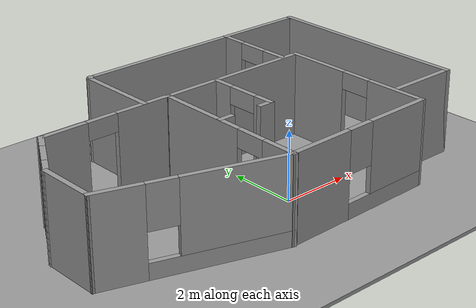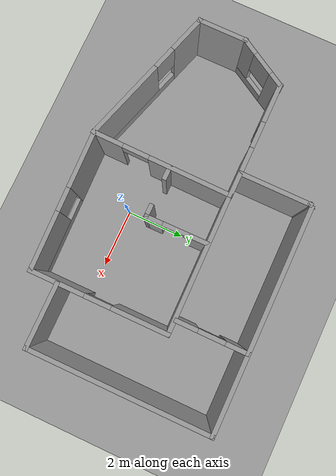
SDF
<sdf version="1.6">
 <world name="default">
  <light name="sun" type="directional">
   <pose>0 0 10 0 -0 0</pose>
   <diffuse>0.8 0.8 0.8 1</diffuse>
   <specular>0.2 0.2 0.2 1</specular>
   <attenuation>
    <range>1000</range>
    <constant>0.9</constant>
    <linear>0.01</linear>
    <quadratic>0.001</quadratic>
   </attenuation>
   <direction>-0.5 0.1 -0.9</direction>
  </light>
  <model name="ground_plane">
   <static>1</static>
   <link name="link">
    <collision name="collision">
     <geometry><plane><normal>0 0 1</normal><size>100 100</size></plane></geometry>
     <surface>
      <contact><collide_bitmask>65535</collide_bitmask></contact>
      <friction><ode><mu>100</mu><mu2>50</mu2></ode></friction>
     </surface>
    </collision>
    <visual name="visual">
     <cast_shadows>0</cast_shadows>
     <geometry><plane><normal>0 0 1</normal><size>100 100</size></plane></geometry>
     <material>
      <script><uri>file://media/materials/scripts/gazebo.material</uri><name>Gazebo/Grey</name></script>
     </material>
    </visual>
   </link>
  </model>
  <gravity>0 0 -9.8</gravity>
  <magnetic_field>6e-06 2.3e-05 -4.2e-05</magnetic_field>
  <atmosphere type="adiabatic"/>
  <physics name="default_physics" default="0" type="ode">
   <max_step_size>0.001</max_step_size>
   <real_time_factor>1</real_time_factor>
   <real_time_update_rate>1000</real_time_update_rate>
  </physics>
  <scene><ambient>0.4 0.4 0.4 1</ambient><background>0.7 0.7 0.7 1</background><shadows>1</shadows></scene>
  <spherical_coordinates>
   <surface_model>EARTH_WGS84</surface_model>
   <latitude_deg>0</latitude_deg>
   <longitude_deg>0</longitude_deg>
   <elevation>0</elevation>
   <heading_deg>0</heading_deg>
  </spherical_coordinates>
  <model name="ground_plane_0">
   <static>1</static>
   <link name="link">
    <collision name="collision">
     <geometry><plane><normal>0 0 1</normal><size>100 100</size></plane></geometry>
     <surface>
      <contact><collide_bitmask>65535</collide_bitmask></contact>
      <friction><ode><mu>100</mu><mu2>50</mu2></ode></friction>
     </surface>
    </collision>
    <visual name="visual">
     <cast_shadows>0</cast_shadows>
     <geometry><plane><normal>0 0 1</normal><size>100 100</size></plane></geometry>
     <material>
      <script><uri>file://media/materials/scripts/gazebo.material</uri><name>Gazebo/Grey</name></script>
     </material>
    </visual>
   </link>
   <pose>-0.652161 2.77731 0 0 -0 0</pose>
  </model>
  <model name="Random">
   <pose>-0.584846 1.7777 0 0 -0 0</pose>
   <link name="Wall_0">
    <pose>1.32023 -3.50444 0 0 -0 0.022779</pose>
    <visual name="Wall_0_Visual_0">
     <pose>-1.42423 0 1.25 0 -0 0</pose>
     <geometry><box><size>1.99902 0.15 2.5</size></box></geometry>
     <material>
      <script><uri>file://media/materials/scripts/gazebo.material</uri><name>Gazebo/Grey</name></script>
      <ambient>1 1 1 1</ambient>
     </material>
     <meta><layer>0</layer></meta>
    </visual>
    <collision name="Wall_0_Collision_0">
     <geometry><box><size>1.99902 0.15 2.5</size></box></geometry>
     <pose>-1.42423 0 1.25 0 -0 0</pose>
    </collision>
    <visual name="Wall_0_Visual_1">
     <pose>0.999509 0 0.25 0 -0 0</pose>
     <geometry><box><size>2.84847 0.15 0.5</size></box></geometry>
     <material>
      <script><uri>file://media/materials/scripts/gazebo.material</uri><name>Gazebo/Grey</name></script>
      <ambient>1 1 1 1</ambient>
     </material>
     <meta><layer>0</layer></meta>
    </visual>
    <collision name="Wall_0_Collision_1">
     <geometry><box><size>2.84847 0.15 0.5</size></box></geometry>
     <pose>0.999509 0 0.25 0 -0 0</pose>
    </collision>
    <visual name="Wall_0_Visual_2">
     <pose>1.39951 0 1.5 0 -0 0</pose>
     <geometry><box><size>2.04847 0.15 2</size></box></geometry>
     <material>
      <script><uri>file://media/materials/scripts/gazebo.material</uri><name>Gazebo/Grey</name></script>
      <ambient>1 1 1 1</ambient>
     </material>
     <meta><layer>0</layer></meta>
    </visual>
    <collision name="Wall_0_Collision_2">
     <geometry><box><size>2.04847 0.15 2</size></box></geometry>
     <pose>1.39951 0 1.5 0 -0 0</pose>
    </collision>
    <visual name="Wall_0_Visual_3">
     <pose>-0.024726 0 1.9 0 -0 0</pose>
     <geometry><box><size>0.8 0.15 1.2</size></box></geometry>
     <material>
      <script><uri>file://media/materials/scripts/gazebo.material</uri><name>Gazebo/Grey</name></script>
      <ambient>1 1 1 1</ambient>
     </material>
     <meta><layer>0</layer></meta>
    </visual>
    <collision name="Wall_0_Collision_3">
     <geometry><box><size>0.8 0.15 1.2</size></box></geometry>
     <pose>-0.024726 0 1.9 0 -0 0</pose>
    </collision>
   </link>
   <link name="Wall_1">
    <pose>3.66857 -1.15094 0 0 -0 1.5708</pose>
    <visual name="Wall_1_Visual_0">
     <pose>-1.43486 0 1.25 0 -0 0</pose>
     <geometry><box><size>1.88027 0.15 2.5</size></box></geometry>
     <material>
      <script><uri>file://media/materials/scripts/gazebo.material</uri><name>Gazebo/Grey</name></script>
      <ambient>1 1 1 1</ambient>
     </material>
     <meta><layer>0</layer></meta>
    </visual>
    <collision name="Wall_1_Collision_0">
     <geometry><box><size>1.88027 0.15 2.5</size></box></geometry>
     <pose>-1.43486 0 1.25 0 -0 0</pose>
    </collision>
    <visual name="Wall_1_Visual_1">
     <pose>1.39014 0 1.25 0 -0 0</pose>
     <geometry><box><size>1.96972 0.15 2.5</size></box></geometry>
     <material>
      <script><uri>file://media/materials/scripts/gazebo.material</uri><name>Gazebo/Grey</name></script>
      <ambient>1 1 1 1</ambient>
     </material>
     <meta><layer>0</layer></meta>
    </visual>
    <collision name="Wall_1_Collision_1">
     <geometry><box><size>1.96972 0.15 2.5</size></box></geometry>
     <pose>1.39014 0 1.25 0 -0 0</pose>
    </collision>
    <visual name="Wall_1_Visual_2">
     <pose>-0.044725 0 2.25 0 -0 0</pose>
     <geometry><box><size>0.9 0.15 0.5</size></box></geometry>
     <material>
      <script><uri>file://media/materials/scripts/gazebo.material</uri><name>Gazebo/Grey</name></script>
      <ambient>1 1 1 1</ambient>
     </material>
     <meta><layer>0</layer></meta>
    </visual>
    <collision name="Wall_1_Collision_2">
     <geometry><box><size>0.9 0.15 0.5</size></box></geometry>
     <pose>-0.044725 0 2.25 0 -0 0</pose>
    </collision>
   </link>
   <link name="Wall_10">
    <pose>-3.3997 -2.82161 0 0 0 -0.30688</pose>
    <visual name="Wall_10_Visual_0">
     <pose>-1.87768 0 1.25 0 -0 0</pose>
     <geometry><box><size>1.37028 0.15 2.5</size></box></geometry>
     <material>
      <script><uri>file://media/materials/scripts/gazebo.material</uri><name>Gazebo/Grey</name></script>
      <ambient>1 1 1 1</ambient>
     </material>
     <meta><layer>0</layer></meta>
    </visual>
    <collision name="Wall_10_Collision_0">
     <geometry><box><size>1.37028 0.15 2.5</size></box></geometry>
     <pose>-1.87768 0 1.25 0 -0 0</pose>
    </collision>
    <visual name="Wall_10_Visual_1">
     <pose>0.685141 0 0.25 0 -0 0</pose>
     <geometry><box><size>3.75536 0.15 0.5</size></box></geometry>
     <material>
      <script><uri>file://media/materials/scripts/gazebo.material</uri><name>Gazebo/Grey</name></script>
      <ambient>1 1 1 1</ambient>
     </material>
     <meta><layer>0</layer></meta>
    </visual>
    <collision name="Wall_10_Collision_1">
     <geometry><box><size>3.75536 0.15 0.5</size></box></geometry>
     <pose>0.685141 0 0.25 0 -0 0</pose>
    </collision>
    <visual name="Wall_10_Visual_2">
     <pose>1.08514 0 1.5 0 -0 0</pose>
     <geometry><box><size>2.95536 0.15 2</size></box></geometry>
     <material>
      <script><uri>file://media/materials/scripts/gazebo.material</uri><name>Gazebo/Grey</name></script>
      <ambient>1 1 1 1</ambient>
     </material>
     <meta><layer>0</layer></meta>
    </visual>
    <collision name="Wall_10_Collision_2">
     <geometry><box><size>2.95536 0.15 2</size></box></geometry>
     <pose>1.08514 0 1.5 0 -0 0</pose>
    </collision>
    <visual name="Wall_10_Visual_3">
     <pose>-0.792539 0 1.9 0 -0 0</pose>
     <geometry><box><size>0.8 0.15 1.2</size></box></geometry>
     <material>
      <script><uri>file://media/materials/scripts/gazebo.material</uri><name>Gazebo/Grey</name></script>
      <ambient>1 1 1 1</ambient>
     </material>
     <meta><layer>0</layer></meta>
    </visual>
    <collision name="Wall_10_Collision_3">
     <geometry><box><size>0.8 0.15 1.2</size></box></geometry>
     <pose>-0.792539 0 1.9 0 -0 0</pose>
    </collision>
   </link>
   <link name="Wall_12">
    <pose>-0.996995 -1.22054 0 0 0 -1.58402</pose>
    <visual name="Wall_12_Visual_0">
     <pose>-0.994285 0 1.25 0 -0 0</pose>
     <geometry><box><size>2.86706 0.15 2.5</size></box></geometry>
     <material>
      <script><uri>file://media/materials/scripts/gazebo.material</uri><name>Gazebo/Grey</name></script>
      <ambient>1 1 1 1</ambient>
     </material>
     <meta><layer>0</layer></meta>
    </visual>
    <collision name="Wall_12_Collision_0">
     <geometry><box><size>2.86706 0.15 2.5</size></box></geometry>
     <pose>-0.994285 0 1.25 0 -0 0</pose>
    </collision>
    <visual name="Wall_12_Visual_1">
     <pose>1.88353 0 1.25 0 -0 0</pose>
     <geometry><box><size>1.08857 0.15 2.5</size></box></geometry>
     <material>
      <script><uri>file://media/materials/scripts/gazebo.material</uri><name>Gazebo/Grey</name></script>
      <ambient>1 1 1 1</ambient>
     </material>
     <meta><layer>0</layer></meta>
    </visual>
    <collision name="Wall_12_Collision_1">
     <geometry><box><size>1.08857 0.15 2.5</size></box></geometry>
     <pose>1.88353 0 1.25 0 -0 0</pose>
    </collision>
    <visual name="Wall_12_Visual_2">
     <pose>0.889245 0 2.25 0 -0 0</pose>
     <geometry><box><size>0.9 0.15 0.5</size></box></geometry>
     <material>
      <script><uri>file://media/materials/scripts/gazebo.material</uri><name>Gazebo/Grey</name></script>
      <ambient>1 1 1 1</ambient>
     </material>
     <meta><layer>0</layer></meta>
    </visual>
    <collision name="Wall_12_Collision_2">
     <geometry><box><size>0.9 0.15 0.5</size></box></geometry>
     <pose>0.889245 0 2.25 0 -0 0</pose>
    </collision>
   </link>
   <link name="Wall_14">
    <collision name="Wall_14_Collision">
     <geometry><box><size>0.5 0.15 2.5</size></box></geometry>
     <pose>0 0 1.25 0 -0 0</pose>
    </collision>
    <visual name="Wall_14_Visual">
     <pose>0 0 1.25 0 -0 0</pose>
     <geometry><box><size>0.5 0.15 2.5</size></box></geometry>
     <material>
      <script><uri>file://media/materials/scripts/gazebo.material</uri><name>Gazebo/Grey</name></script>
      <ambient>1 1 1 1</ambient>
     </material>
     <meta><layer>0</layer></meta>
    </visual>
    <pose>-0.806087 -0.939403 0 0 -0 0</pose>
   </link>
   <link name="Wall_16">
    <pose>0.69948 0.071383 0 0 0 -1.56328</pose>
    <visual name="Wall_16_Visual_0">
     <pose>-0.757081 0 1.25 0 -0 0</pose>
     <geometry><box><size>0.659852 0.15 2.5</size></box></geometry>
     <material>
      <script><uri>file://media/materials/scripts/gazebo.material</uri><name>Gazebo/Grey</name></script>
      <ambient>1 1 1 1</ambient>
     </material>
     <meta><layer>0</layer></meta>
    </visual>
    <collision name="Wall_16_Collision_0">
     <geometry><box><size>0.659852 0.15 2.5</size></box></geometry>
     <pose>-0.757081 0 1.25 0 -0 0</pose>
    </collision>
    <visual name="Wall_16_Visual_1">
     <pose>0.779926 0 1.25 0 -0 0</pose>
     <geometry><box><size>0.614162 0.15 2.5</size></box></geometry>
     <material>
      <script><uri>file://media/materials/scripts/gazebo.material</uri><name>Gazebo/Grey</name></script>
      <ambient>1 1 1 1</ambient>
     </material>
     <meta><layer>0</layer></meta>
    </visual>
    <collision name="Wall_16_Collision_1">
     <geometry><box><size>0.614162 0.15 2.5</size></box></geometry>
     <pose>0.779926 0 1.25 0 -0 0</pose>
    </collision>
    <visual name="Wall_16_Visual_2">
     <pose>0.022845 0 2.25 0 -0 0</pose>
     <geometry><box><size>0.9 0.15 0.5</size></box></geometry>
     <material>
      <script><uri>file://media/materials/scripts/gazebo.material</uri><name>Gazebo/Grey</name></script>
      <ambient>1 1 1 1</ambient>
     </material>
     <meta><layer>0</layer></meta>
    </visual>
    <collision name="Wall_16_Collision_2">
     <geometry><box><size>0.9 0.15 0.5</size></box></geometry>
     <pose>0.022845 0 2.25 0 -0 0</pose>
    </collision>
   </link>
   <link name="Wall_17">
    <collision name="Wall_17_Collision">
     <geometry><box><size>0.5 0.15 2.5</size></box></geometry>
     <pose>0 0 1.25 0 -0 0</pose>
    </collision>
    <visual name="Wall_17_Visual">
     <pose>0 0 1.25 0 -0 0</pose>
     <geometry><box><size>0.5 0.15 2.5</size></box></geometry>
     <material>
      <script><uri>file://media/materials/scripts/gazebo.material</uri><name>Gazebo/Grey</name></script>
      <ambient>1 1 1 1</ambient>
     </material>
     <meta><layer>0</layer></meta>
    </visual>
    <pose>0.532084 -0.955804 0 0 -0 3.14159</pose>
   </link>
   <link name="Wall_19">
    <collision name="Wall_19_Collision">
     <geometry><box><size>2.5 0.15 2.5</size></box></geometry>
     <pose>0 0 1.25 0 -0 0</pose>
    </collision>
    <visual name="Wall_19_Visual">
     <pose>0 0 1.25 0 -0 0</pose>
     <geometry><box><size>2.5 0.15 2.5</size></box></geometry>
     <material>
      <script><uri>file://media/materials/scripts/gazebo.material</uri><name>Gazebo/Grey</name></script>
      <ambient>1 1 1 1</ambient>
     </material>
     <meta><layer>0</layer></meta>
    </visual>
    <pose>-1.73196 2.31553 0 0 -0 1.5708</pose>
   </link>
   <link name="Wall_2">
    <collision name="Wall_2_Collision">
     <geometry><box><size>4.79503 0.15 2.5</size></box></geometry>
     <pose>0 0 1.25 0 -0 0</pose>
    </collision>
    <visual name="Wall_2_Visual">
     <pose>0 0 1.25 0 -0 0</pose>
     <geometry><box><size>4.79503 0.15 2.5</size></box></geometry>
     <material>
      <script><uri>file://media/materials/scripts/gazebo.material</uri><name>Gazebo/Grey</name></script>
      <ambient>1 1 1 1</ambient>
     </material>
     <meta><layer>0</layer></meta>
    </visual>
    <pose>1.34605 1.13395 0 0 0 -3.13509</pose>
   </link>
   <link name="Wall_20">
    <collision name="Wall_20_Collision">
     <geometry><box><size>0.25 0.15 2.5</size></box></geometry>
     <pose>0 0 1.25 0 -0 0</pose>
    </collision>
    <visual name="Wall_20_Visual">
     <pose>0 0 1.25 0 -0 0</pose>
     <geometry><box><size>0.25 0.15 2.5</size></box></geometry>
     <material>
      <script><uri>file://media/materials/scripts/gazebo.material</uri><name>Gazebo/Grey</name></script>
      <ambient>1 1 1 1</ambient>
     </material>
     <meta><layer>0</layer></meta>
    </visual>
    <pose>-1.69661 3.52588 0 0 -0 0.785398</pose>
   </link>
   <link name="Wall_21">
    <collision name="Wall_21_Collision">
     <geometry><box><size>5 0.15 2.5</size></box></geometry>
     <pose>0 0 1.25 0 -0 0</pose>
    </collision>
    <visual name="Wall_21_Visual">
     <pose>0 0 1.25 0 -0 0</pose>
     <geometry><box><size>5 0.15 2.5</size></box></geometry>
     <material>
      <script><uri>file://media/materials/scripts/gazebo.material</uri><name>Gazebo/Grey</name></script>
      <ambient>1 1 1 1</ambient>
     </material>
     <meta><layer>0</layer></meta>
    </visual>
    <pose>0.763748 3.56124 0 0 -0 0</pose>
   </link>
   <link name="Wall_22">
    <pose>3.18875 2.38624 0 0 0 -1.5708</pose>
    <visual name="Wall_22_Visual_0">
     <pose>-0.840106 0 1.25 0 -0 0</pose>
     <geometry><box><size>0.819789 0.15 2.5</size></box></geometry>
     <material>
      <script><uri>file://media/materials/scripts/gazebo.material</uri><name>Gazebo/Grey</name></script>
      <ambient>1 1 1 1</ambient>
     </material>
     <meta><layer>0</layer></meta>
    </visual>
    <collision name="Wall_22_Collision_0">
     <geometry><box><size>0.819789 0.15 2.5</size></box></geometry>
     <pose>-0.840106 0 1.25 0 -0 0</pose>
    </collision>
    <visual name="Wall_22_Visual_1">
     <pose>0.859894 0 1.25 0 -0 0</pose>
     <geometry><box><size>0.780211 0.15 2.5</size></box></geometry>
     <material>
      <script><uri>file://media/materials/scripts/gazebo.material</uri><name>Gazebo/Grey</name></script>
      <ambient>1 1 1 1</ambient>
     </material>
     <meta><layer>0</layer></meta>
    </visual>
    <collision name="Wall_22_Collision_1">
     <geometry><box><size>0.780211 0.15 2.5</size></box></geometry>
     <pose>0.859894 0 1.25 0 -0 0</pose>
    </collision>
    <visual name="Wall_22_Visual_2">
     <pose>0.019789 0 2.25 0 -0 0</pose>
     <geometry><box><size>0.9 0.15 0.5</size></box></geometry>
     <material>
      <script><uri>file://media/materials/scripts/gazebo.material</uri><name>Gazebo/Grey</name></script>
      <ambient>1 1 1 1</ambient>
     </material>
     <meta><layer>0</layer></meta>
    </visual>
    <collision name="Wall_22_Collision_2">
     <geometry><box><size>0.9 0.15 0.5</size></box></geometry>
     <pose>0.019789 0 2.25 0 -0 0</pose>
    </collision>
   </link>
   <link name="Wall_24">
    <collision name="Wall_24_Collision">
     <geometry><box><size>2.75 0.15 2.5</size></box></geometry>
     <pose>0 0 1.25 0 -0 0</pose>
    </collision>
    <visual name="Wall_24_Visual">
     <pose>0 0 1.25 0 -0 0</pose>
     <geometry><box><size>2.75 0.15 2.5</size></box></geometry>
     <material>
      <script><uri>file://media/materials/scripts/gazebo.material</uri><name>Gazebo/Grey</name></script>
      <ambient>1 1 1 1</ambient>
     </material>
     <meta><layer>0</layer></meta>
    </visual>
    <pose>4.48875 3.56124 0 0 -0 0</pose>
   </link>
   <link name="Wall_25">
    <collision name="Wall_25_Collision">
     <geometry><box><size>0.16 0.15 2.5</size></box></geometry>
     <pose>0 0 1.25 0 -0 0</pose>
    </collision>
    <visual name="Wall_25_Visual">
     <pose>0 0 1.25 0 -0 0</pose>
     <geometry><box><size>0.16 0.15 2.5</size></box></geometry>
     <material>
      <script><uri>file://media/materials/scripts/gazebo.material</uri><name>Gazebo/Grey</name></script>
      <ambient>1 1 1 1</ambient>
     </material>
     <meta><layer>0</layer></meta>
    </visual>
    <pose>5.79375 3.56124 0 0 -0 0</pose>
   </link>
   <link name="Wall_26">
    <collision name="Wall_26_Collision">
     <geometry><box><size>6.25 0.15 2.5</size></box></geometry>
     <pose>0 0 1.25 0 -0 0</pose>
    </collision>
    <visual name="Wall_26_Visual">
     <pose>0 0 1.25 0 -0 0</pose>
     <geometry><box><size>6.25 0.15 2.5</size></box></geometry>
     <material>
      <script><uri>file://media/materials/scripts/gazebo.material</uri><name>Gazebo/Grey</name></script>
      <ambient>1 1 1 1</ambient>
     </material>
     <meta><layer>0</layer></meta>
    </visual>
    <pose>5.79875 0.511237 0 0 0 -1.5708</pose>
   </link>
   <link name="Wall_27">
    <collision name="Wall_27_Collision">
     <geometry><box><size>2.25 0.15 2.5</size></box></geometry>
     <pose>0 0 1.25 0 -0 0</pose>
    </collision>
    <visual name="Wall_27_Visual">
     <pose>0 0 1.25 0 -0 0</pose>
     <geometry><box><size>2.25 0.15 2.5</size></box></geometry>
     <material>
      <script><uri>file://media/materials/scripts/gazebo.material</uri><name>Gazebo/Grey</name></script>
      <ambient>1 1 1 1</ambient>
     </material>
     <meta><layer>0</layer></meta>
    </visual>
    <pose>4.74875 -2.53876 0 0 -0 3.14159</pose>
   </link>
   <link name="Wall_7">
    <pose>-2.90609 1.13207 0 0 -0 3.14159</pose>
    <visual name="Wall_7_Visual_0">
     <pose>-1.14501 0 1.25 0 -0 0</pose>
     <geometry><box><size>1.74039 0.15 2.5</size></box></geometry>
     <material>
      <script><uri>file://media/materials/scripts/gazebo.material</uri><name>Gazebo/Grey</name></script>
      <ambient>1 1 1 1</ambient>
     </material>
     <meta><layer>0</layer></meta>
    </visual>
    <collision name="Wall_7_Collision_0">
     <geometry><box><size>1.74039 0.15 2.5</size></box></geometry>
     <pose>-1.14501 0 1.25 0 -0 0</pose>
    </collision>
    <visual name="Wall_7_Visual_1">
     <pose>1.3202 0 1.25 0 -0 0</pose>
     <geometry><box><size>1.39003 0.15 2.5</size></box></geometry>
     <material>
      <script><uri>file://media/materials/scripts/gazebo.material</uri><name>Gazebo/Grey</name></script>
      <ambient>1 1 1 1</ambient>
     </material>
     <meta><layer>0</layer></meta>
    </visual>
    <collision name="Wall_7_Collision_1">
     <geometry><box><size>1.39003 0.15 2.5</size></box></geometry>
     <pose>1.3202 0 1.25 0 -0 0</pose>
    </collision>
    <visual name="Wall_7_Visual_2">
     <pose>0.175181 0 2.25 0 -0 0</pose>
     <geometry><box><size>0.9 0.15 0.5</size></box></geometry>
     <material>
      <script><uri>file://media/materials/scripts/gazebo.material</uri><name>Gazebo/Grey</name></script>
      <ambient>1 1 1 1</ambient>
     </material>
     <meta><layer>0</layer></meta>
    </visual>
    <collision name="Wall_7_Collision_2">
     <geometry><box><size>0.9 0.15 0.5</size></box></geometry>
     <pose>0.175181 0 2.25 0 -0 0</pose>
    </collision>
   </link>
   <link name="Wall_8">
    <pose>-5.3088 0.330995 0 0 0 -2.0944</pose>
    <visual name="Wall_8_Visual_0">
     <pose>-0.71633 0 1.25 0 -0 0</pose>
     <geometry><box><size>0.56734 0.15 2.5</size></box></geometry>
     <material>
      <script><uri>file://media/materials/scripts/gazebo.material</uri><name>Gazebo/Grey</name></script>
      <ambient>1 1 1 1</ambient>
     </material>
     <meta><layer>0</layer></meta>
    </visual>
    <collision name="Wall_8_Collision_0">
     <geometry><box><size>0.56734 0.15 2.5</size></box></geometry>
     <pose>-0.71633 0 1.25 0 -0 0</pose>
    </collision>
    <visual name="Wall_8_Visual_1">
     <pose>0.28367 0 0.25 0 -0 0</pose>
     <geometry><box><size>1.43266 0.15 0.5</size></box></geometry>
     <material>
      <script><uri>file://media/materials/scripts/gazebo.material</uri><name>Gazebo/Grey</name></script>
      <ambient>1 1 1 1</ambient>
     </material>
     <meta><layer>0</layer></meta>
    </visual>
    <collision name="Wall_8_Collision_1">
     <geometry><box><size>1.43266 0.15 0.5</size></box></geometry>
     <pose>0.28367 0 0.25 0 -0 0</pose>
    </collision>
    <visual name="Wall_8_Visual_2">
     <pose>0.68367 0 1.5 0 -0 0</pose>
     <geometry><box><size>0.63266 0.15 2</size></box></geometry>
     <material>
      <script><uri>file://media/materials/scripts/gazebo.material</uri><name>Gazebo/Grey</name></script>
      <ambient>1 1 1 1</ambient>
     </material>
     <meta><layer>0</layer></meta>
    </visual>
    <collision name="Wall_8_Collision_2">
     <geometry><box><size>0.63266 0.15 2</size></box></geometry>
     <pose>0.68367 0 1.5 0 -0 0</pose>
    </collision>
    <visual name="Wall_8_Visual_3">
     <pose>-0.03266 0 1.9 0 -0 0</pose>
     <geometry><box><size>0.8 0.15 1.2</size></box></geometry>
     <material>
      <script><uri>file://media/materials/scripts/gazebo.material</uri><name>Gazebo/Grey</name></script>
      <ambient>1 1 1 1</ambient>
     </material>
     <meta><layer>0</layer></meta>
    </visual>
    <collision name="Wall_8_Collision_3">
     <geometry><box><size>0.8 0.15 1.2</size></box></geometry>
     <pose>-0.03266 0 1.9 0 -0 0</pose>
    </collision>
   </link>
   <link name="Wall_9">
    <collision name="Wall_9_Collision">
     <geometry><box><size>1.75 0.15 2.5</size></box></geometry>
     <pose>0 0 1.25 0 -0 0</pose>
    </collision>
    <visual name="Wall_9_Visual">
     <pose>0 0 1.25 0 -0 0</pose>
     <geometry><box><size>1.75 0.15 2.5</size></box></geometry>
     <material>
      <script><uri>file://media/materials/scripts/gazebo.material</uri><name>Gazebo/Grey</name></script>
      <ambient>1 1 1 1</ambient>
     </material>
     <meta><layer>0</layer></meta>
    </visual>
    <pose>-5.7713 -1.27008 0 0 0 -1.5708</pose>
   </link>
   <static>1</static>
  </model>
 </world>
</sdf>
